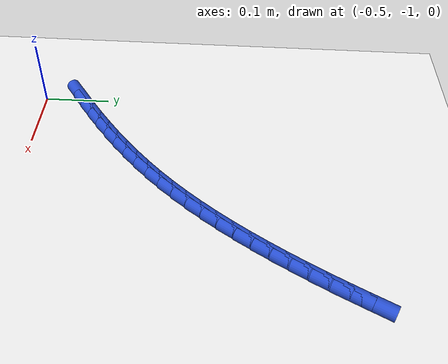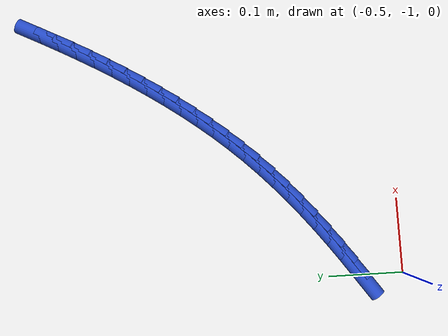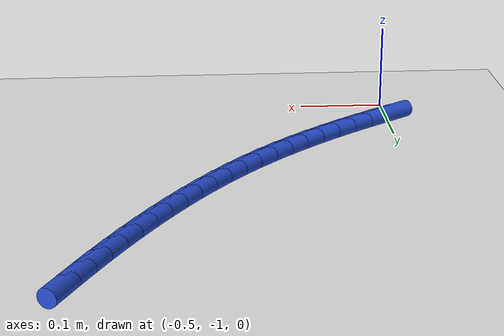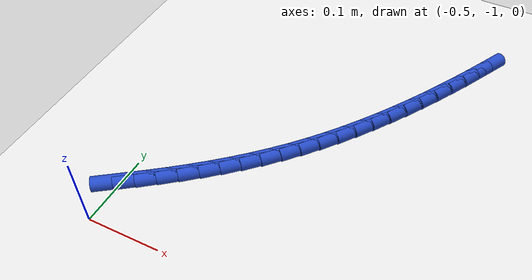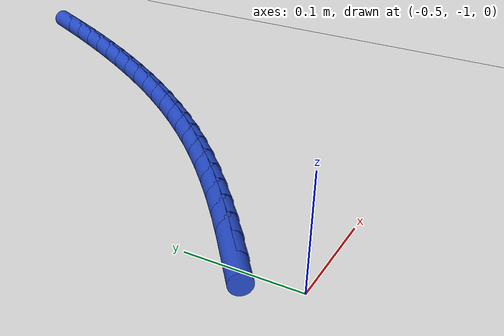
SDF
<sdf version="1.6">
 <world name="default">
  <model name="ground_plane">
   <static>1</static>
   <link name="link">
    <collision name="collision">
     <geometry><plane><normal>0 0 1</normal><size>100 100</size></plane></geometry>
     <surface><friction><ode><mu>100</mu><mu2>50</mu2></ode></friction></surface>
    </collision>
    <visual name="visual">
     <cast_shadows>0</cast_shadows>
     <geometry><plane><normal>0 0 1</normal><size>100 100</size></plane></geometry>
     <material>
      <script><uri>file://media/materials/scripts/gazebo.material</uri><name>Gazebo/WhiteGlow</name></script>
     </material>
    </visual>
   </link>
  </model>
  <model name="line">
   <link name="link_209">
    <pose>-0.4933636294108146 -0.9380073753237894 0.01 0 1.57 0.6123780785911294</pose>
    <collision name="collision">
     <geometry><cylinder><radius>0.01</radius><length>0.08</length></cylinder></geometry>
    </collision>
    <visual name="visual">
     <material>
      <script><name>Gazebo/Blue</name><uri>file://media/materials/scripts/gazebo.material</uri></script>
     </material>
     <geometry><cylinder><radius>0.01</radius><length>0.08</length></cylinder></geometry>
    </visual>
   </link>
   <link name="link_210">
    <pose>-0.4711268006520766 -0.922386792471473 0.01 0 1.57 0.6322847891841833</pose>
    <collision name="collision">
     <geometry><cylinder><radius>0.01</radius><length>0.08</length></cylinder></geometry>
    </collision>
    <visual name="visual">
     <material>
      <script><name>Gazebo/Blue</name><uri>file://media/materials/scripts/gazebo.material</uri></script>
     </material>
     <geometry><cylinder><radius>0.01</radius><length>0.08</length></cylinder></geometry>
    </visual>
   </link>
   <link name="link_211">
    <pose>-0.4493590538124007 -0.9064393062891786 0.01 0 1.57 0.6543480425246754</pose>
    <collision name="collision">
     <geometry><cylinder><radius>0.01</radius><length>0.08</length></cylinder></geometry>
    </collision>
    <visual name="visual">
     <material>
      <script><name>Gazebo/Blue</name><uri>file://media/materials/scripts/gazebo.material</uri></script>
     </material>
     <geometry><cylinder><radius>0.01</radius><length>0.08</length></cylinder></geometry>
    </visual>
   </link>
   <link name="link_212">
    <pose>-0.4280850771604508 -0.890120293691841 0.01 0 1.57 0.6785702607076933</pose>
    <collision name="collision">
     <geometry><cylinder><radius>0.01</radius><length>0.08</length></cylinder></geometry>
    </collision>
    <visual name="visual">
     <material>
      <script><name>Gazebo/Blue</name><uri>file://media/materials/scripts/gazebo.material</uri></script>
     </material>
     <geometry><cylinder><radius>0.01</radius><length>0.08</length></cylinder></geometry>
    </visual>
   </link>
   <link name="link_213">
    <pose>-0.40732955896489076 -0.8733851315943942 0.01 0 1.57 0.7049367691402217</pose>
    <collision name="collision">
     <geometry><cylinder><radius>0.01</radius><length>0.08</length></cylinder></geometry>
    </collision>
    <visual name="visual">
     <material>
      <script><name>Gazebo/Blue</name><uri>file://media/materials/scripts/gazebo.material</uri></script>
     </material>
     <geometry><cylinder><radius>0.01</radius><length>0.08</length></cylinder></geometry>
    </visual>
   </link>
   <link name="link_214">
    <pose>-0.3871171874943847 -0.8561891969117732 0.01 0 1.57 0.7334123493752077</pose>
    <collision name="collision">
     <geometry><cylinder><radius>0.01</radius><length>0.08</length></cylinder></geometry>
    </collision>
    <visual name="visual">
     <material>
      <script><name>Gazebo/Blue</name><uri>file://media/materials/scripts/gazebo.material</uri></script>
     </material>
     <geometry><cylinder><radius>0.01</radius><length>0.08</length></cylinder></geometry>
    </visual>
   </link>
   <link name="link_215">
    <pose>-0.36747265101759635 -0.8384878665589124 0.01 0 1.57 0.7639378676261869</pose>
    <collision name="collision">
     <geometry><cylinder><radius>0.01</radius><length>0.08</length></cylinder></geometry>
    </collision>
    <visual name="visual">
     <material>
      <script><name>Gazebo/Blue</name><uri>file://media/materials/scripts/gazebo.material</uri></script>
     </material>
     <geometry><cylinder><radius>0.01</radius><length>0.08</length></cylinder></geometry>
    </visual>
   </link>
   <link name="link_216">
    <pose>-0.3484206378031898 -0.8202365174507468 0.01 0 1.57 0.7964272366439213</pose>
    <collision name="collision">
     <geometry><cylinder><radius>0.01</radius><length>0.08</length></cylinder></geometry>
    </collision>
    <visual name="visual">
     <material>
      <script><name>Gazebo/Blue</name><uri>file://media/materials/scripts/gazebo.material</uri></script>
     </material>
     <geometry><cylinder><radius>0.01</radius><length>0.08</length></cylinder></geometry>
    </visual>
   </link>
   <link name="link_217">
    <pose>-0.329985836119829 -0.8013905265022103 0.01 0 1.57 0.830506394955693</pose>
    <collision name="collision">
     <geometry><cylinder><radius>0.01</radius><length>0.08</length></cylinder></geometry>
    </collision>
    <visual name="visual">
     <material>
      <script><name>Gazebo/Blue</name><uri>file://media/materials/scripts/gazebo.material</uri></script>
     </material>
     <geometry><cylinder><radius>0.01</radius><length>0.08</length></cylinder></geometry>
    </visual>
   </link>
   <link name="link_218">
    <pose>-0.3121891310563178 -0.7819112253412881 0.01 0 1.57 0.8637715346606735</pose>
    <collision name="collision">
     <geometry><cylinder><radius>0.01</radius><length>0.08</length></cylinder></geometry>
    </collision>
    <visual name="visual">
     <material>
      <script><name>Gazebo/Blue</name><uri>file://media/materials/scripts/gazebo.material</uri></script>
     </material>
     <geometry><cylinder><radius>0.01</radius><length>0.08</length></cylinder></geometry>
    </visual>
   </link>
   <link name="link_219">
    <pose>-0.2950176578778536 -0.7618127883545236 0.01 0 1.57 0.8949899124420733</pose>
    <collision name="collision">
     <geometry><cylinder><radius>0.01</radius><length>0.08</length></cylinder></geometry>
    </collision>
    <visual name="visual">
     <material>
      <script><name>Gazebo/Blue</name><uri>file://media/materials/scripts/gazebo.material</uri></script>
     </material>
     <geometry><cylinder><radius>0.01</radius><length>0.08</length></cylinder></geometry>
    </visual>
   </link>
   <link name="link_220">
    <pose>-0.27844089569301644 -0.7411370345180129 0.01 0 1.57 0.924150515743322</pose>
    <collision name="collision">
     <geometry><cylinder><radius>0.01</radius><length>0.08</length></cylinder></geometry>
    </collision>
    <visual name="visual">
     <material>
      <script><name>Gazebo/Blue</name><uri>file://media/materials/scripts/gazebo.material</uri></script>
     </material>
     <geometry><cylinder><radius>0.01</radius><length>0.08</length></cylinder></geometry>
    </visual>
   </link>
   <link name="link_221">
    <pose>-0.26242816917004574 -0.7199260246181146 0.01 0 1.57 0.9512683565280369</pose>
    <collision name="collision">
     <geometry><cylinder><radius>0.01</radius><length>0.08</length></cylinder></geometry>
    </collision>
    <visual name="visual">
     <material>
      <script><name>Gazebo/Blue</name><uri>file://media/materials/scripts/gazebo.material</uri></script>
     </material>
     <geometry><cylinder><radius>0.01</radius><length>0.08</length></cylinder></geometry>
    </visual>
   </link>
   <link name="link_222">
    <pose>-0.24694880297718053 -0.6982218194411869 0.01 0 1.57 0.9763701627490362</pose>
    <collision name="collision">
     <geometry><cylinder><radius>0.01</radius><length>0.08</length></cylinder></geometry>
    </collision>
    <visual name="visual">
     <material>
      <script><name>Gazebo/Blue</name><uri>file://media/materials/scripts/gazebo.material</uri></script>
     </material>
     <geometry><cylinder><radius>0.01</radius><length>0.08</length></cylinder></geometry>
    </visual>
   </link>
   <link name="link_223">
    <pose>-0.23197212178265994 -0.6760664797735882 0.01 0 1.57 0.9994909203265842</pose>
    <collision name="collision">
     <geometry><cylinder><radius>0.01</radius><length>0.08</length></cylinder></geometry>
    </collision>
    <visual name="visual">
     <material>
      <script><name>Gazebo/Blue</name><uri>file://media/materials/scripts/gazebo.material</uri></script>
     </material>
     <geometry><cylinder><radius>0.01</radius><length>0.08</length></cylinder></geometry>
    </visual>
   </link>
   <link name="link_224">
    <pose>-0.21746745025472308 -0.6535020664016767 0.01 0 1.57 1.0206708206681063</pose>
    <collision name="collision">
     <geometry><cylinder><radius>0.01</radius><length>0.08</length></cylinder></geometry>
    </collision>
    <visual name="visual">
     <material>
      <script><name>Gazebo/Blue</name><uri>file://media/materials/scripts/gazebo.material</uri></script>
     </material>
     <geometry><cylinder><radius>0.01</radius><length>0.08</length></cylinder></geometry>
    </visual>
   </link>
   <link name="link_225">
    <pose>-0.20340411306160902 -0.6305706401118107 0.01 0 1.57 1.039952627798825</pose>
    <collision name="collision">
     <geometry><cylinder><radius>0.01</radius><length>0.08</length></cylinder></geometry>
    </collision>
    <visual name="visual">
     <material>
      <script><name>Gazebo/Blue</name><uri>file://media/materials/scripts/gazebo.material</uri></script>
     </material>
     <geometry><cylinder><radius>0.01</radius><length>0.08</length></cylinder></geometry>
    </visual>
   </link>
   <link name="link_226">
    <pose>-0.189751434871557 -0.6073142616903489 0.01 0 1.57 1.0573794483599357</pose>
    <collision name="collision">
     <geometry><cylinder><radius>0.01</radius><length>0.08</length></cylinder></geometry>
    </collision>
    <visual name="visual">
     <material>
      <script><name>Gazebo/Blue</name><uri>file://media/materials/scripts/gazebo.material</uri></script>
     </material>
     <geometry><cylinder><radius>0.01</radius><length>0.08</length></cylinder></geometry>
    </visual>
   </link>
   <link name="link_227">
    <pose>-0.17647874035280595 -0.5837749919236492 0.01 0 1.57 1.0729928681904504</pose>
    <collision name="collision">
     <geometry><cylinder><radius>0.01</radius><length>0.08</length></cylinder></geometry>
    </collision>
    <visual name="visual">
     <material>
      <script><name>Gazebo/Blue</name><uri>file://media/materials/scripts/gazebo.material</uri></script>
     </material>
     <geometry><cylinder><radius>0.01</radius><length>0.08</length></cylinder></geometry>
    </visual>
   </link>
   <link name="link_228">
    <pose>-0.16355535417359512 -0.5599948915980699 0.01 0 1.57 1.0868314085324866</pose>
    <collision name="collision">
     <geometry><cylinder><radius>0.01</radius><length>0.08</length></cylinder></geometry>
    </collision>
    <visual name="visual">
     <material>
      <script><name>Gazebo/Blue</name><uri>file://media/materials/scripts/gazebo.material</uri></script>
     </material>
     <geometry><cylinder><radius>0.01</radius><length>0.08</length></cylinder></geometry>
    </visual>
   </link>
   <link name="link_229">
    <pose>-0.15095060100216354 -0.5360160214999695 0.01 0 1.57 1.0989292507015644</pose>
    <collision name="collision">
     <geometry><cylinder><radius>0.01</radius><length>0.08</length></cylinder></geometry>
    </collision>
    <visual name="visual">
     <material>
      <script><name>Gazebo/Blue</name><uri>file://media/materials/scripts/gazebo.material</uri></script>
     </material>
     <geometry><cylinder><radius>0.01</radius><length>0.08</length></cylinder></geometry>
    </visual>
   </link>
  </model>
 </world>
</sdf>
